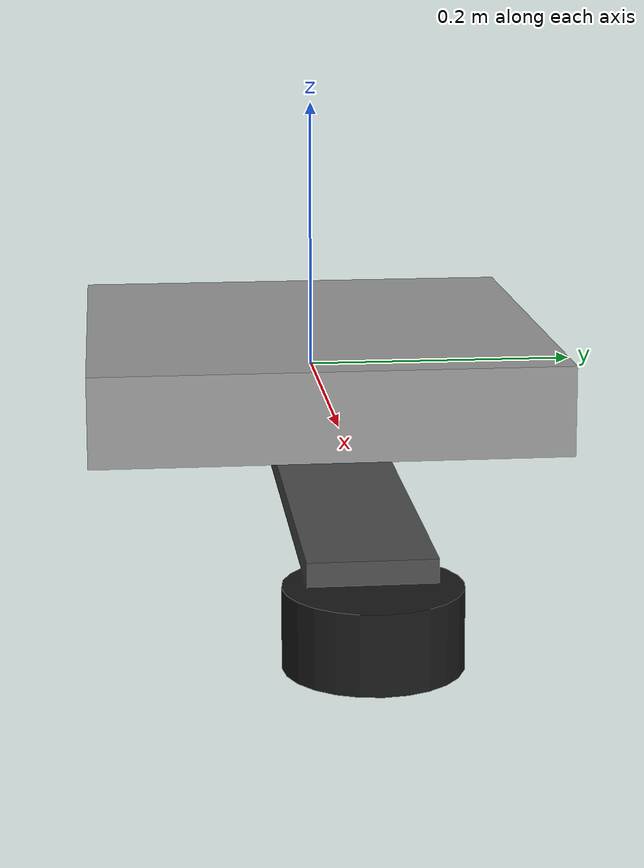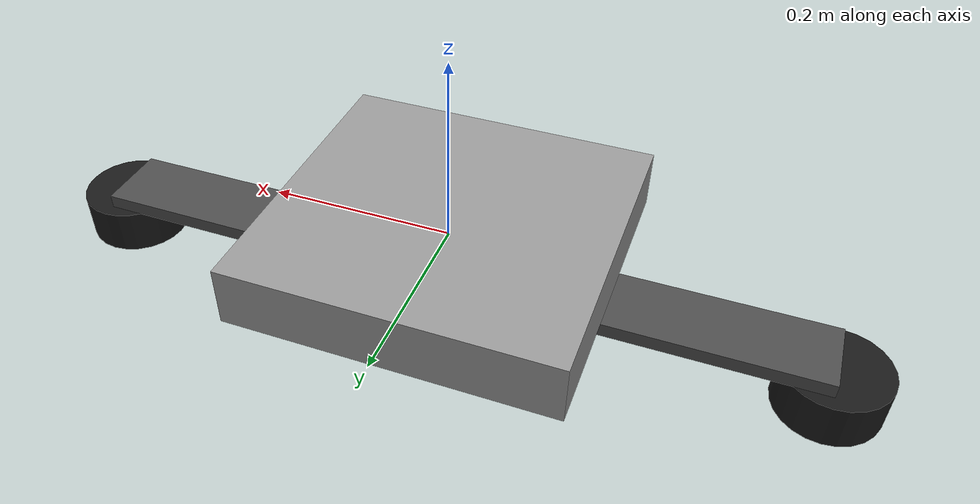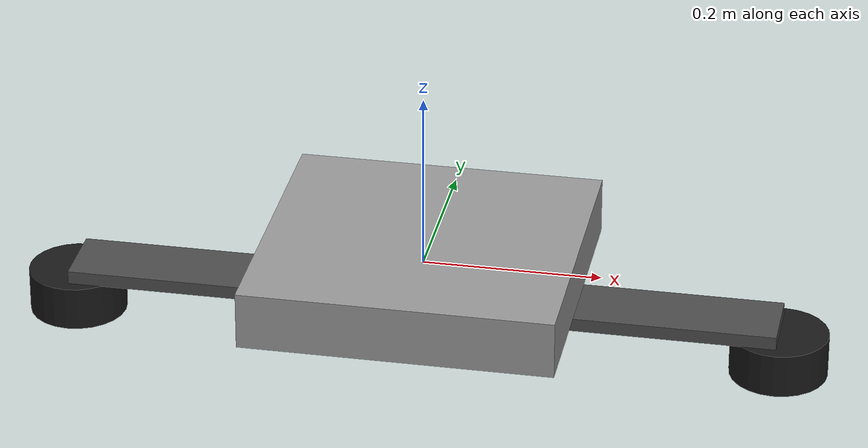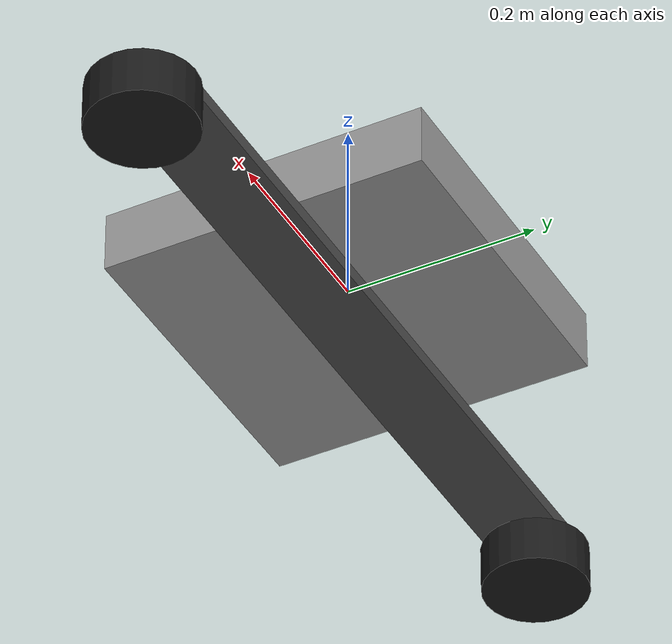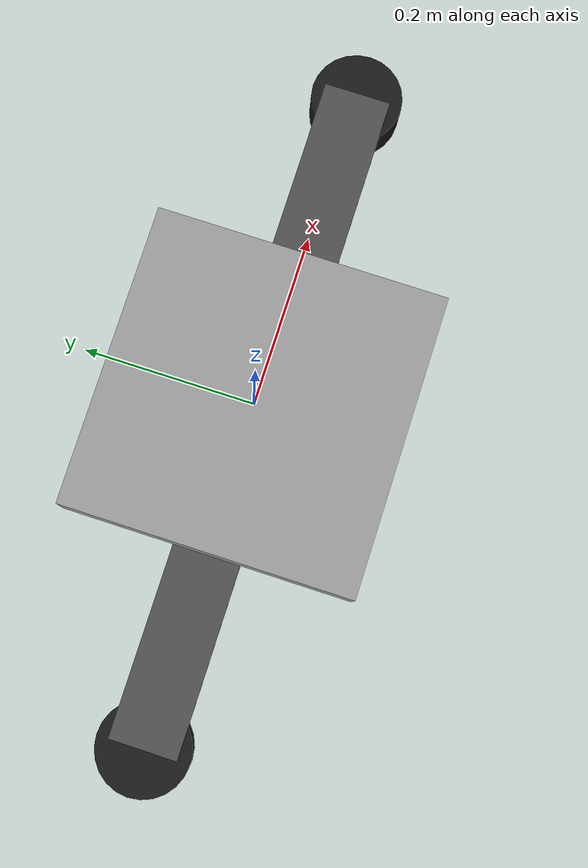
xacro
<?xml version="1.0"?>
<robot name="table_viewer" xmlns:xacro="http://www.ros.org/wiki/xacro">

  <!-- Include the table macro definition -->
  <!-- Make sure $(find workcell_description) resolves correctly -->
  <xacro:include filename="$(find workcell_description)/urdf/moving_table.urdf.xacro" />

  <!-- Define a world link to attach the table to -->
  <link name="world"/>

  <!-- Instantiate the moving_table macro -->
  <!-- Give it a prefix and attach it to the world frame -->
  <xacro:moving_table prefix="test_table_" parent="world">
    <!-- Define the origin (position and orientation) relative to the parent ('world') -->
    <origin xyz="0 0 0" rpy="0 0 0"/>
  </xacro:moving_table>

</robot>

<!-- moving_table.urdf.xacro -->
<robot xmlns:xacro="http://www.ros.org/wiki/xacro">

  <!-- ========== MATERIALS ========== -->
  <material name="grey"><color rgba="0.6 0.6 0.6 1.0"/></material>
  <material name="dark_grey"><color rgba="0.3 0.3 0.3 1.0"/></material>
  <material name="black"><color rgba="0.1 0.1 0.1 1.0"/></material>

  <!-- ========== MACRO: MOVING TABLE ========== -->
  <xacro:macro name="moving_table" params="prefix parent *origin">

    <!-- Base -->
    <link name="${prefix}base_link"/>
    <joint name="${prefix}base_joint" type="fixed">
      <parent link="${parent}"/>
      <child link="${prefix}base_link"/>
      <xacro:insert_block name="origin"/>
    </joint>

    <!-- Platform -->
    <link name="${prefix}platform_link">
      <visual>
        <geometry><box size="0.35 0.34 0.065"/></geometry>
        <material name="grey"/>
      </visual>
      <collision>
        <geometry><box size="0.35 0.34 0.065"/></geometry>
      </collision>
      <inertial>
        <mass value="5.0"/>
        <inertia ixx="${5.0/12.0 * (0.34*0.34 + 0.065*0.065)}"
                 iyy="${5.0/12.0 * (0.35*0.35 + 0.065*0.065)}"
                 izz="${5.0/12.0 * (0.35*0.35 + 0.34*0.34)}"
                 ixy="0" ixz="0" iyz="0"/>
      </inertial>
    </link>

    <!-- Linear slide -->
    <joint name="${prefix}linear_joint" type="prismatic">
      <parent link="${prefix}base_link"/>
      <child link="${prefix}platform_link"/>
      <origin xyz="0 0 0" rpy="0 0 0"/>
      <axis xyz="1 0 0"/>
      <limit lower="-1.5" upper="1.5" effort="1000" velocity="0.5"/>
    </joint>

    <!-- Rotation bar -->
    <link name="${prefix}rotation_link">
      <visual>
        <geometry><box size="0.08 0.8 0.015"/></geometry>
        <material name="dark_grey"/>
      </visual>
      <collision>
        <geometry><box size="0.08 0.8 0.015"/></geometry>
      </collision>
      <inertial>
        <mass value="3.0"/>
        <inertia ixx="${3.0/12.0*(0.8*0.8 + 0.015*0.015)}"
                 iyy="${3.0/12.0*(0.08*0.08 + 0.015*0.015)}"
                 izz="${3.0/12.0*(0.08*0.08 + 0.8*0.8)}"
                 ixy="0" ixz="0" iyz="0"/>
      </inertial>
    </link>

    <!-- Fixed rotation joint (no flicker) -->

    <!-- Rotating joint (instead of fixed) -->
    <joint name="${prefix}rotation_joint" type="revolute">
      <parent link="${prefix}platform_link"/>
      <child link="${prefix}rotation_link"/>
      <origin xyz="0 0 -${0.065/2 + 0.015/2}" rpy="0 0 ${pi/2}"/> <!-- default 90° -->
      <axis xyz="0 0 1"/> <!-- rotate around Z -->
      <limit lower="-1.57" upper="1.57" effort="10" velocity="1.0"/> <!-- example ±90° -->
    </joint>

    <!-- ========== Mount plates (Arm attachment points) ========== -->
    <xacro:property name="mount_plate_radius" value="${0.055}"/> <!-- 11cm diameter -->
    <xacro:property name="mount_plate_length" value="0.05"/>
    <xacro:property name="mount_plate_mass" value="0.2"/>
    <xacro:property name="mount_plate_z_offset_on_link" value="-${0.015/2 + 0.05/2}"/>
    <xacro:property name="mount_plate_y_offset" value="0.4"/>

    <!-- Left plate -->
    <link name="${prefix}mount_plate_left">
      <visual>
        <geometry><cylinder radius="${mount_plate_radius}" length="${mount_plate_length}"/></geometry>
        <material name="black"/>
      </visual>
      <collision>
        <geometry><cylinder radius="${mount_plate_radius}" length="${mount_plate_length}"/></geometry>
      </collision>
      <inertial>
        <mass value="${mount_plate_mass}"/>
        <inertia ixx="${mount_plate_mass/12.0*(3*mount_plate_radius*mount_plate_radius + mount_plate_length*mount_plate_length)}"
                 iyy="${mount_plate_mass/12.0*(3*mount_plate_radius*mount_plate_radius + mount_plate_length*mount_plate_length)}"
                 izz="${mount_plate_mass/2.0*mount_plate_radius*mount_plate_radius}"
                 ixy="0" ixz="0" iyz="0"/>
      </inertial>
    </link>
    <joint name="${prefix}mount_plate_left_joint" type="fixed">
      <parent link="${prefix}rotation_link"/>
      <child link="${prefix}mount_plate_left"/>
      <origin xyz="0 ${mount_plate_y_offset} ${mount_plate_z_offset_on_link}" rpy="0 0 0"/>
    </joint>

    <!-- Right plate -->
    <link name="${prefix}mount_plate_right">
      <visual>
        <geometry><cylinder radius="${mount_plate_radius}" length="${mount_plate_length}"/></geometry>
        <material name="black"/>
      </visual>
      <collision>
        <geometry><cylinder radius="${mount_plate_radius}" length="${mount_plate_length}"/></geometry>
      </collision>
      <inertial>
        <mass value="${mount_plate_mass}"/>
        <inertia ixx="${mount_plate_mass/12.0*(3*mount_plate_radius*mount_plate_radius + mount_plate_length*mount_plate_length)}"
                 iyy="${mount_plate_mass/12.0*(3*mount_plate_radius*mount_plate_radius + mount_plate_length*mount_plate_length)}"
                 izz="${mount_plate_mass/2.0*mount_plate_radius*mount_plate_radius}"
                 ixy="0" ixz="0" iyz="0"/>
      </inertial>
    </link>
    <joint name="${prefix}mount_plate_right_joint" type="fixed">
      <parent link="${prefix}rotation_link"/>
      <child link="${prefix}mount_plate_right"/>
      <origin xyz="0 -${mount_plate_y_offset} ${mount_plate_z_offset_on_link}" rpy="0 0 0"/>
    </joint>

  </xacro:macro>
</robot>
